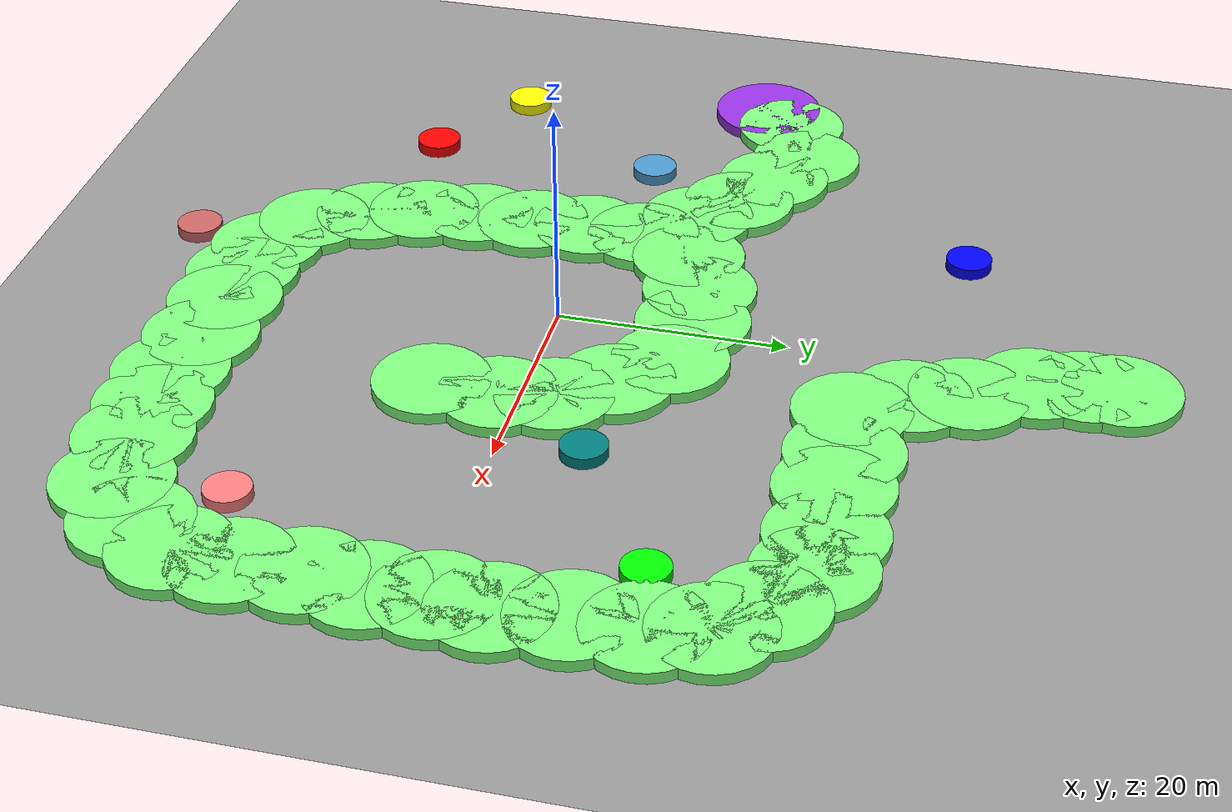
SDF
<sdf version="1.10">
 <world name="default">
  <gravity>0 0 -9.8000000000000007</gravity>
  <magnetic_field>5.5644999999999998e-06 2.2875799999999999e-05 -4.2388400000000002e-05</magnetic_field>
  <atmosphere type="adiabatic"/>
  <physics type="ode">
   <max_step_size>0.001</max_step_size>
   <real_time_factor>1</real_time_factor>
   <real_time_update_rate>1000</real_time_update_rate>
  </physics>
  <scene>
   <ambient>0.400000006 0.400000006 0.400000006 1</ambient>
   <background>0.699999988 0.699999988 0.699999988 1</background>
   <shadows>true</shadows>
  </scene>
  <model name="ground_plane">
   <static>true</static>
   <link name="link">
    <collision name="collision">
     <geometry><plane><normal>0 0 1</normal><size>100 100</size></plane></geometry>
     <surface><contact><collide_without_contact_bitmask>1</collide_without_contact_bitmask></contact></surface>
    </collision>
    <visual name="visual">
     <geometry><plane><normal>0 0 1</normal><size>100 100</size></plane></geometry>
     <material>
      <ambient>0.600000024 0.600000024 0.600000024 1</ambient>
      <diffuse>0.600000024 0.600000024 0.600000024 1</diffuse>
     </material>
    </visual>
    <inertial>
     <mass>1</mass>
     <inertia><ixx>1</ixx><ixy>0</ixy><ixz>0</ixz><iyy>1</iyy><iyz>0</iyz><izz>1</izz></inertia>
    </inertial>
   </link>
  </model>
  <model name="static_cylinder_1">
   <static>true</static>
   <pose>-25.100000000000001 -18.5 0.5 0 0 0</pose>
   <link name="link">
    <collision name="collision">
     <geometry><cylinder><radius>2</radius><length>1</length></cylinder></geometry>
    </collision>
    <visual name="visual">
     <geometry><cylinder><radius>2</radius><length>1</length></cylinder></geometry>
     <material><ambient>1 0 0 1</ambient></material>
    </visual>
    <inertial>
     <mass>1</mass>
     <inertia><ixx>1</ixx><ixy>0</ixy><ixz>0</ixz><iyy>1</iyy><iyz>0</iyz><izz>1</izz></inertia>
    </inertial>
   </link>
  </model>
  <model name="static_cylinder_2">
   <static>true</static>
   <pose>31.399999999999999 15.199999999999999 0.5 0 0 0</pose>
   <link name="link">
    <collision name="collision">
     <geometry><cylinder><radius>2</radius><length>1</length></cylinder></geometry>
    </collision>
    <visual name="visual">
     <geometry><cylinder><radius>2</radius><length>1</length></cylinder></geometry>
     <material><ambient>0 1 0 1</ambient></material>
    </visual>
    <inertial>
     <mass>1</mass>
     <inertia><ixx>1</ixx><ixy>0</ixy><ixz>0</ixz><iyy>1</iyy><iyz>0</iyz><izz>1</izz></inertia>
    </inertial>
   </link>
  </model>
  <model name="static_cylinder_3">
   <static>true</static>
   <pose>-15.9 33.299999999999997 0.5 0 0 0</pose>
   <link name="link">
    <collision name="collision">
     <geometry><cylinder><radius>2</radius><length>1</length></cylinder></geometry>
    </collision>
    <visual name="visual">
     <geometry><cylinder><radius>2</radius><length>1</length></cylinder></geometry>
     <material><ambient>0 0 1 1</ambient></material>
    </visual>
    <inertial>
     <mass>1</mass>
     <inertia><ixx>1</ixx><ixy>0</ixy><ixz>0</ixz><iyy>1</iyy><iyz>0</iyz><izz>1</izz></inertia>
    </inertial>
   </link>
  </model>
  <model name="static_cylinder_4">
   <static>true</static>
   <pose>-35 -12.199999999999999 0.5 0 0 0</pose>
   <link name="link">
    <collision name="collision">
     <geometry><cylinder><radius>2</radius><length>1</length></cylinder></geometry>
    </collision>
    <visual name="visual">
     <geometry><cylinder><radius>2</radius><length>1</length></cylinder></geometry>
     <material><ambient>1 1 0 1</ambient></material>
    </visual>
    <inertial>
     <mass>1</mass>
     <inertia><ixx>1</ixx><ixy>0</ixy><ixz>0</ixz><iyy>1</iyy><iyz>0</iyz><izz>1</izz></inertia>
    </inertial>
   </link>
  </model>
  <model name="static_cylinder_5">
   <static>true</static>
   <pose>-5.5999999999999996 -35 0.5 0 0 0</pose>
   <link name="link">
    <collision name="collision">
     <geometry><cylinder><radius>2</radius><length>1</length></cylinder></geometry>
    </collision>
    <visual name="visual">
     <geometry><cylinder><radius>2</radius><length>1</length></cylinder></geometry>
     <material><ambient>0.800000012 0.400000006 0.400000006 1</ambient></material>
    </visual>
    <inertial>
     <mass>1</mass>
     <inertia><ixx>1</ixx><ixy>0</ixy><ixz>0</ixz><iyy>1</iyy><iyz>0</iyz><izz>1</izz></inertia>
    </inertial>
   </link>
  </model>
  <model name="static_cylinder_6">
   <static>true</static>
   <pose>18.215400695800781 7.0263118743896484 0.5 0 0 0</pose>
   <link name="link">
    <collision name="collision">
     <geometry><cylinder><radius>2</radius><length>1</length></cylinder></geometry>
    </collision>
    <visual name="visual">
     <geometry><cylinder><radius>2</radius><length>1</length></cylinder></geometry>
     <material><ambient>0 0.5 0.5 1</ambient></material>
    </visual>
    <inertial>
     <mass>1</mass>
     <inertia><ixx>1</ixx><ixy>0</ixy><ixz>0</ixz><iyy>1</iyy><iyz>0</iyz><izz>1</izz></inertia>
    </inertial>
   </link>
  </model>
  <model name="static_cylinder_7">
   <static>true</static>
   <pose>-25 2.7000000000000002 0.5 0 0 0</pose>
   <link name="link">
    <collision name="collision">
     <geometry><cylinder><radius>2</radius><length>1</length></cylinder></geometry>
    </collision>
    <visual name="visual">
     <geometry><cylinder><radius>2</radius><length>1</length></cylinder></geometry>
     <material><ambient>0.300000012 0.600000024 0.800000012 1</ambient></material>
    </visual>
    <inertial>
     <mass>1</mass>
     <inertia><ixx>1</ixx><ixy>0</ixy><ixz>0</ixz><iyy>1</iyy><iyz>0</iyz><izz>1</izz></inertia>
    </inertial>
   </link>
  </model>
  <model name="static_cylinder_8">
   <static>true</static>
   <pose>29.899999999999999 -18.300000000000001 0.5 0 0 0</pose>
   <link name="link">
    <collision name="collision">
     <geometry><cylinder><radius>2</radius><length>1</length></cylinder></geometry>
    </collision>
    <visual name="visual">
     <geometry><cylinder><radius>2</radius><length>1</length></cylinder></geometry>
     <material><ambient>1 0.5 0.5 1</ambient></material>
    </visual>
    <inertial>
     <mass>1</mass>
     <inertia><ixx>1</ixx><ixy>0</ixy><ixz>0</ixz><iyy>1</iyy><iyz>0</iyz><izz>1</izz></inertia>
    </inertial>
   </link>
  </model>
  <model name="static_cylinder_9">
   <static>true</static>
   <pose>-38.200000000000003 11 0.5 0 0 0</pose>
   <link name="link">
    <collision name="collision">
     <geometry><cylinder><radius>5</radius><length>1</length></cylinder></geometry>
    </collision>
    <visual name="visual">
     <geometry><cylinder><radius>5</radius><length>1</length></cylinder></geometry>
     <material><ambient>0.600000024 0.200000003 0.899999976 1</ambient></material>
    </visual>
    <inertial>
     <mass>1</mass>
     <inertia><ixx>1</ixx><ixy>0</ixy><ixz>0</ixz><iyy>1</iyy><iyz>0</iyz><izz>1</izz></inertia>
    </inertial>
   </link>
  </model>
  <model name="static_cylinder_10">
   <static>true</static>
   <pose>18.699999999999999 27.100000000000001 0.5 0 0 0</pose>
   <link name="link">
    <collision name="collision">
     <geometry><cylinder><radius>5</radius><length>1</length></cylinder></geometry>
    </collision>
    <visual name="visual">
     <geometry><cylinder><radius>5</radius><length>1</length></cylinder></geometry>
     <material><ambient>0.5 1 0.5 1</ambient></material>
    </visual>
    <inertial>
     <mass>1</mass>
     <inertia><ixx>1</ixx><ixy>0</ixy><ixz>0</ixz><iyy>1</iyy><iyz>0</iyz><izz>1</izz></inertia>
    </inertial>
   </link>
  </model>
  <model name="static_cylinder_11">
   <static>true</static>
   <pose>28.789109487139029 27.353598416478576 0.5 0 0 0</pose>
   <link name="link">
    <collision name="collision">
     <geometry><cylinder><radius>5</radius><length>1</length></cylinder></geometry>
    </collision>
    <visual name="visual">
     <geometry><cylinder><radius>5</radius><length>1</length></cylinder></geometry>
     <material><ambient>0.5 1 0.5 1</ambient></material>
    </visual>
    <inertial>
     <mass>1</mass>
     <inertia><ixx>1</ixx><ixy>0</ixy><ixz>0</ixz><iyy>1</iyy><iyz>0</iyz><izz>1</izz></inertia>
    </inertial>
   </link>
  </model>
  <model name="static_cylinder_12">
   <static>true</static>
   <pose>36.821050008611053 21.323088967489401 0.5 0 0 0</pose>
   <link name="link">
    <collision name="collision">
     <geometry><cylinder><radius>5</radius><length>1</length></cylinder></geometry>
    </collision>
    <visual name="visual">
     <geometry><cylinder><radius>5</radius><length>1</length></cylinder></geometry>
     <material><ambient>0.5 1 0.5 1</ambient></material>
    </visual>
    <inertial>
     <mass>1</mass>
     <inertia><ixx>1</ixx><ixy>0</ixy><ixz>0</ixz><iyy>1</iyy><iyz>0</iyz><izz>1</izz></inertia>
    </inertial>
   </link>
  </model>
  <model name="static_cylinder_13">
   <static>true</static>
   <pose>37.876146426909671 11.109972079700153 0.5 0 0 0</pose>
   <link name="link">
    <collision name="collision">
     <geometry><cylinder><radius>5</radius><length>1</length></cylinder></geometry>
    </collision>
    <visual name="visual">
     <geometry><cylinder><radius>5</radius><length>1</length></cylinder></geometry>
     <material><ambient>0.5 1 0.5 1</ambient></material>
    </visual>
    <inertial>
     <mass>1</mass>
     <inertia><ixx>1</ixx><ixy>0</ixy><ixz>0</ixz><iyy>1</iyy><iyz>0</iyz><izz>1</izz></inertia>
    </inertial>
   </link>
  </model>
  <model name="static_cylinder_14">
   <static>true</static>
   <pose>38.088748783338417 0.91967666526617364 0.5 0 0 0</pose>
   <link name="link">
    <collision name="collision">
     <geometry><cylinder><radius>5</radius><length>1</length></cylinder></geometry>
    </collision>
    <visual name="visual">
     <geometry><cylinder><radius>5</radius><length>1</length></cylinder></geometry>
     <material><ambient>0.5 1 0.5 1</ambient></material>
    </visual>
    <inertial>
     <mass>1</mass>
     <inertia><ixx>1</ixx><ixy>0</ixy><ixz>0</ixz><iyy>1</iyy><iyz>0</iyz><izz>1</izz></inertia>
    </inertial>
   </link>
  </model>
  <model name="static_cylinder_15">
   <static>true</static>
   <pose>37.728131469176276 -9.2460475246674783 0.5 0 0 0</pose>
   <link name="link">
    <collision name="collision">
     <geometry><cylinder><radius>5</radius><length>1</length></cylinder></geometry>
    </collision>
    <visual name="visual">
     <geometry><cylinder><radius>5</radius><length>1</length></cylinder></geometry>
     <material><ambient>0.5 1 0.5 1</ambient></material>
    </visual>
    <inertial>
     <mass>1</mass>
     <inertia><ixx>1</ixx><ixy>0</ixy><ixz>0</ixz><iyy>1</iyy><iyz>0</iyz><izz>1</izz></inertia>
    </inertial>
   </link>
  </model>
  <model name="static_cylinder_16">
   <static>true</static>
   <pose>37.613380369497179 -19.757383936378488 0.5 0 0 0</pose>
   <link name="link">
    <collision name="collision">
     <geometry><cylinder><radius>5</radius><length>1</length></cylinder></geometry>
    </collision>
    <visual name="visual">
     <geometry><cylinder><radius>5</radius><length>1</length></cylinder></geometry>
     <material><ambient>0.5 1 0.5 1</ambient></material>
    </visual>
    <inertial>
     <mass>1</mass>
     <inertia><ixx>1</ixx><ixy>0</ixy><ixz>0</ixz><iyy>1</iyy><iyz>0</iyz><izz>1</izz></inertia>
    </inertial>
   </link>
  </model>
  <model name="static_cylinder_17">
   <static>true</static>
   <pose>30.913677807027938 -27.392619820683258 0.5 0 0 0</pose>
   <link name="link">
    <collision name="collision">
     <geometry><cylinder><radius>5</radius><length>1</length></cylinder></geometry>
    </collision>
    <visual name="visual">
     <geometry><cylinder><radius>5</radius><length>1</length></cylinder></geometry>
     <material><ambient>0.5 1 0.5 1</ambient></material>
    </visual>
    <inertial>
     <mass>1</mass>
     <inertia><ixx>1</ixx><ixy>0</ixy><ixz>0</ixz><iyy>1</iyy><iyz>0</iyz><izz>1</izz></inertia>
    </inertial>
   </link>
  </model>
  <model name="static_cylinder_18">
   <static>true</static>
   <pose>20.801909503736844 -28.339821706497233 0.5 0 0 0</pose>
   <link name="link">
    <collision name="collision">
     <geometry><cylinder><radius>5</radius><length>1</length></cylinder></geometry>
    </collision>
    <visual name="visual">
     <geometry><cylinder><radius>5</radius><length>1</length></cylinder></geometry>
     <material><ambient>0.5 1 0.5 1</ambient></material>
    </visual>
    <inertial>
     <mass>1</mass>
     <inertia><ixx>1</ixx><ixy>0</ixy><ixz>0</ixz><iyy>1</iyy><iyz>0</iyz><izz>1</izz></inertia>
    </inertial>
   </link>
  </model>
  <model name="static_cylinder_19">
   <static>true</static>
   <pose>10.733389901877011 -28.262699547093735 0.5 0 0 0</pose>
   <link name="link">
    <collision name="collision">
     <geometry><cylinder><radius>5</radius><length>1</length></cylinder></geometry>
    </collision>
    <visual name="visual">
     <geometry><cylinder><radius>5</radius><length>1</length></cylinder></geometry>
     <material><ambient>0.5 1 0.5 1</ambient></material>
    </visual>
    <inertial>
     <mass>1</mass>
     <inertia><ixx>1</ixx><ixy>0</ixy><ixz>0</ixz><iyy>1</iyy><iyz>0</iyz><izz>1</izz></inertia>
    </inertial>
   </link>
  </model>
  <model name="static_cylinder_20">
   <static>true</static>
   <pose>0.66140178595651733 -28.462214288480322 0.5 0 0 0</pose>
   <link name="link">
    <collision name="collision">
     <geometry><cylinder><radius>5</radius><length>1</length></cylinder></geometry>
    </collision>
    <visual name="visual">
     <geometry><cylinder><radius>5</radius><length>1</length></cylinder></geometry>
     <material><ambient>0.5 1 0.5 1</ambient></material>
    </visual>
    <inertial>
     <mass>1</mass>
     <inertia><ixx>1</ixx><ixy>0</ixy><ixz>0</ixz><iyy>1</iyy><iyz>0</iyz><izz>1</izz></inertia>
    </inertial>
   </link>
  </model>
  <model name="static_cylinder_21">
   <static>true</static>
   <pose>-8.7282936021540944 -25.202778341422459 0.5 0 0 0</pose>
   <link name="link">
    <collision name="collision">
     <geometry><cylinder><radius>5</radius><length>1</length></cylinder></geometry>
    </collision>
    <visual name="visual">
     <geometry><cylinder><radius>5</radius><length>1</length></cylinder></geometry>
     <material><ambient>0.5 1 0.5 1</ambient></material>
    </visual>
    <inertial>
     <mass>1</mass>
     <inertia><ixx>1</ixx><ixy>0</ixy><ixz>0</ixz><iyy>1</iyy><iyz>0</iyz><izz>1</izz></inertia>
    </inertial>
   </link>
  </model>
  <model name="static_cylinder_22">
   <static>true</static>
   <pose>-12.468609087340889 -15.976988225588176 0.5 0 0 0</pose>
   <link name="link">
    <collision name="collision">
     <geometry><cylinder><radius>5</radius><length>1</length></cylinder></geometry>
    </collision>
    <visual name="visual">
     <geometry><cylinder><radius>5</radius><length>1</length></cylinder></geometry>
     <material><ambient>0.5 1 0.5 1</ambient></material>
    </visual>
    <inertial>
     <mass>1</mass>
     <inertia><ixx>1</ixx><ixy>0</ixy><ixz>0</ixz><iyy>1</iyy><iyz>0</iyz><izz>1</izz></inertia>
    </inertial>
   </link>
  </model>
  <model name="static_cylinder_23">
   <static>true</static>
   <pose>-13.181461190576854 -5.8998051646721379 0.5 0 0 0</pose>
   <link name="link">
    <collision name="collision">
     <geometry><cylinder><radius>5</radius><length>1</length></cylinder></geometry>
    </collision>
    <visual name="visual">
     <geometry><cylinder><radius>5</radius><length>1</length></cylinder></geometry>
     <material><ambient>0.5 1 0.5 1</ambient></material>
    </visual>
    <inertial>
     <mass>1</mass>
     <inertia><ixx>1</ixx><ixy>0</ixy><ixz>0</ixz><iyy>1</iyy><iyz>0</iyz><izz>1</izz></inertia>
    </inertial>
   </link>
  </model>
  <model name="static_cylinder_24">
   <static>true</static>
   <pose>-13.35513468840729 4.3641804795332249 0.5 0 0 0</pose>
   <link name="link">
    <collision name="collision">
     <geometry><cylinder><radius>5</radius><length>1</length></cylinder></geometry>
    </collision>
    <visual name="visual">
     <geometry><cylinder><radius>5</radius><length>1</length></cylinder></geometry>
     <material><ambient>0.5 1 0.5 1</ambient></material>
    </visual>
    <inertial>
     <mass>1</mass>
     <inertia><ixx>1</ixx><ixy>0</ixy><ixz>0</ixz><iyy>1</iyy><iyz>0</iyz><izz>1</izz></inertia>
    </inertial>
   </link>
  </model>
  <model name="static_cylinder_25">
   <static>true</static>
   <pose>8.5300112520538072 26.79578032693728 0.5 0 0 0</pose>
   <link name="link">
    <collision name="collision">
     <geometry><cylinder><radius>5</radius><length>1</length></cylinder></geometry>
    </collision>
    <visual name="visual">
     <geometry><cylinder><radius>5</radius><length>1</length></cylinder></geometry>
     <material><ambient>0.5 1 0.5 1</ambient></material>
    </visual>
    <inertial>
     <mass>1</mass>
     <inertia><ixx>1</ixx><ixy>0</ixy><ixz>0</ixz><iyy>1</iyy><iyz>0</iyz><izz>1</izz></inertia>
    </inertial>
   </link>
  </model>
  <model name="static_cylinder_27">
   <static>true</static>
   <pose>4.2570589520719357 35.740485094827399 0.5 0 0 0</pose>
   <link name="link">
    <collision name="collision">
     <geometry><cylinder><radius>5</radius><length>1</length></cylinder></geometry>
    </collision>
    <visual name="visual">
     <geometry><cylinder><radius>5</radius><length>1</length></cylinder></geometry>
     <material><ambient>0.5 1 0.5 1</ambient></material>
    </visual>
    <inertial>
     <mass>1</mass>
     <inertia><ixx>1</ixx><ixy>0</ixy><ixz>0</ixz><iyy>1</iyy><iyz>0</iyz><izz>1</izz></inertia>
    </inertial>
   </link>
  </model>
  <model name="static_cylinder_28">
   <static>true</static>
   <pose>-5.6907421468030881 11.169694972897341 0.5 0 0 0</pose>
   <link name="link">
    <collision name="collision">
     <geometry><cylinder><radius>5</radius><length>1</length></cylinder></geometry>
    </collision>
    <visual name="visual">
     <geometry><cylinder><radius>5</radius><length>1</length></cylinder></geometry>
     <material><ambient>0.5 1 0.5 1</ambient></material>
    </visual>
    <inertial>
     <mass>1</mass>
     <inertia><ixx>1</ixx><ixy>0</ixy><ixz>0</ixz><iyy>1</iyy><iyz>0</iyz><izz>1</izz></inertia>
    </inertial>
   </link>
  </model>
  <model name="static_cylinder_29">
   <static>true</static>
   <pose>5.245891484314777 11.079642084485315 0.5 0 0 0</pose>
   <link name="link">
    <collision name="collision">
     <geometry><cylinder><radius>5</radius><length>1</length></cylinder></geometry>
    </collision>
    <visual name="visual">
     <geometry><cylinder><radius>5</radius><length>1</length></cylinder></geometry>
     <material><ambient>0.5 1 0.5 1</ambient></material>
    </visual>
    <inertial>
     <mass>1</mass>
     <inertia><ixx>1</ixx><ixy>0</ixy><ixz>0</ixz><iyy>1</iyy><iyz>0</iyz><izz>1</izz></inertia>
    </inertial>
   </link>
  </model>
  <model name="static_cylinder_30">
   <static>true</static>
   <pose>12.1613362137705 2.9984726909024317 0.5 0 0 0</pose>
   <link name="link">
    <collision name="collision">
     <geometry><cylinder><radius>5</radius><length>1</length></cylinder></geometry>
    </collision>
    <visual name="visual">
     <geometry><cylinder><radius>5</radius><length>1</length></cylinder></geometry>
     <material><ambient>0.5 1 0.5 1</ambient></material>
    </visual>
    <inertial>
     <mass>1</mass>
     <inertia><ixx>1</ixx><ixy>0</ixy><ixz>0</ixz><iyy>1</iyy><iyz>0</iyz><izz>1</izz></inertia>
    </inertial>
   </link>
  </model>
  <model name="static_cylinder_31">
   <static>true</static>
   <pose>12.567534002159334 -7.3457730666494108 0.5 0 0 0</pose>
   <link name="link">
    <collision name="collision">
     <geometry><cylinder><radius>5</radius><length>1</length></cylinder></geometry>
    </collision>
    <visual name="visual">
     <geometry><cylinder><radius>5</radius><length>1</length></cylinder></geometry>
     <material><ambient>0.5 1 0.5 1</ambient></material>
    </visual>
    <inertial>
     <mass>1</mass>
     <inertia><ixx>1</ixx><ixy>0</ixy><ixz>0</ixz><iyy>1</iyy><iyz>0</iyz><izz>1</izz></inertia>
    </inertial>
   </link>
  </model>
  <model name="static_cylinder_32">
   <static>true</static>
   <pose>-20.773193998181192 11.599392987046576 0.5 0 0 0</pose>
   <link name="link">
    <collision name="collision">
     <geometry><cylinder><radius>5</radius><length>1</length></cylinder></geometry>
    </collision>
    <visual name="visual">
     <geometry><cylinder><radius>5</radius><length>1</length></cylinder></geometry>
     <material><ambient>0.5 1 0.5 1</ambient></material>
    </visual>
    <inertial>
     <mass>1</mass>
     <inertia><ixx>1</ixx><ixy>0</ixy><ixz>0</ixz><iyy>1</iyy><iyz>0</iyz><izz>1</izz></inertia>
    </inertial>
   </link>
  </model>
  <model name="static_cylinder_33">
   <static>true</static>
   <pose>-29.710972519822878 16.261262573408086 0.5 0 0 0</pose>
   <link name="link">
    <collision name="collision">
     <geometry><cylinder><radius>5</radius><length>1</length></cylinder></geometry>
    </collision>
    <visual name="visual">
     <geometry><cylinder><radius>5</radius><length>1</length></cylinder></geometry>
     <material><ambient>0.5 1 0.5 1</ambient></material>
    </visual>
    <inertial>
     <mass>1</mass>
     <inertia><ixx>1</ixx><ixy>0</ixy><ixz>0</ixz><iyy>1</iyy><iyz>0</iyz><izz>1</izz></inertia>
    </inertial>
   </link>
  </model>
  <model name="static_cylinder_13_1">
   <static>true</static>
   <pose>38.395715330231326 5.284003002594039 0.5 0 0 0</pose>
   <link name="link">
    <collision name="collision">
     <geometry><cylinder><radius>5</radius><length>1</length></cylinder></geometry>
    </collision>
    <visual name="visual">
     <geometry><cylinder><radius>5</radius><length>1</length></cylinder></geometry>
     <material><ambient>0.5 1 0.5 1</ambient></material>
    </visual>
   </link>
  </model>
  <model name="static_cylinder_13_2">
   <static>true</static>
   <pose>37.799609090635677 16.692745116200797 0.5 0 0 0</pose>
   <link name="link">
    <collision name="collision">
     <geometry><cylinder><radius>5</radius><length>1</length></cylinder></geometry>
    </collision>
    <visual name="visual">
     <geometry><cylinder><radius>5</radius><length>1</length></cylinder></geometry>
     <material><ambient>0.5 1 0.5 1</ambient></material>
    </visual>
   </link>
  </model>
  <model name="static_cylinder_13_3">
   <static>true</static>
   <pose>33.597928629771133 24.628390948504801 0.5 0 0 0</pose>
   <link name="link">
    <collision name="collision">
     <geometry><cylinder><radius>5</radius><length>1</length></cylinder></geometry>
    </collision>
    <visual name="visual">
     <geometry><cylinder><radius>5</radius><length>1</length></cylinder></geometry>
     <material><ambient>0.5 1 0.5 1</ambient></material>
    </visual>
   </link>
  </model>
  <model name="static_cylinder_13_4">
   <static>true</static>
   <pose>38.207498057393423 -4.2476673502205138 0.5 0 0 0</pose>
   <link name="link">
    <collision name="collision">
     <geometry><cylinder><radius>5</radius><length>1</length></cylinder></geometry>
    </collision>
    <visual name="visual">
     <geometry><cylinder><radius>5</radius><length>1</length></cylinder></geometry>
     <material><ambient>0.5 1 0.5 1</ambient></material>
    </visual>
   </link>
  </model>
  <model name="static_cylinder_13_5">
   <static>true</static>
   <pose>37.969821950185889 -14.912941395477464 0.5 0 0 0</pose>
   <link name="link">
    <collision name="collision">
     <geometry><cylinder><radius>5</radius><length>1</length></cylinder></geometry>
    </collision>
    <visual name="visual">
     <geometry><cylinder><radius>5</radius><length>1</length></cylinder></geometry>
     <material><ambient>0.5 1 0.5 1</ambient></material>
    </visual>
   </link>
  </model>
  <model name="static_cylinder_13_6">
   <static>true</static>
   <pose>35.080401302120265 -24.025337462788936 0.5 0 0 0</pose>
   <link name="link">
    <collision name="collision">
     <geometry><cylinder><radius>5</radius><length>1</length></cylinder></geometry>
    </collision>
    <visual name="visual">
     <geometry><cylinder><radius>5</radius><length>1</length></cylinder></geometry>
     <material><ambient>0.5 1 0.5 1</ambient></material>
    </visual>
   </link>
  </model>
  <model name="static_cylinder_13_7">
   <static>true</static>
   <pose>25.323190579346878 -28.081149903125208 0.5 0 0 0</pose>
   <link name="link">
    <collision name="collision">
     <geometry><cylinder><radius>5</radius><length>1</length></cylinder></geometry>
    </collision>
    <visual name="visual">
     <geometry><cylinder><radius>5</radius><length>1</length></cylinder></geometry>
     <material><ambient>0.5 1 0.5 1</ambient></material>
    </visual>
   </link>
  </model>
  <model name="static_cylinder_13_8">
   <static>true</static>
   <pose>16.170642902903285 -28.723953957240369 0.5 0 0 0</pose>
   <link name="link">
    <collision name="collision">
     <geometry><cylinder><radius>5</radius><length>1</length></cylinder></geometry>
    </collision>
    <visual name="visual">
     <geometry><cylinder><radius>5</radius><length>1</length></cylinder></geometry>
     <material><ambient>0.5 1 0.5 1</ambient></material>
    </visual>
   </link>
  </model>
  <model name="static_cylinder_13_9">
   <static>true</static>
   <pose>5.2392009223387035 -28.310294923190497 0.5 0 0 0</pose>
   <link name="link">
    <collision name="collision">
     <geometry><cylinder><radius>5</radius><length>1</length></cylinder></geometry>
    </collision>
    <visual name="visual">
     <geometry><cylinder><radius>5</radius><length>1</length></cylinder></geometry>
     <material><ambient>0.5 1 0.5 1</ambient></material>
    </visual>
   </link>
  </model>
  <model name="static_cylinder_13_10">
   <static>true</static>
   <pose>-3.9865299925450808 -27.91157850077618 0.5 0 0 0</pose>
   <link name="link">
    <collision name="collision">
     <geometry><cylinder><radius>5</radius><length>1</length></cylinder></geometry>
    </collision>
    <visual name="visual">
     <geometry><cylinder><radius>5</radius><length>1</length></cylinder></geometry>
     <material><ambient>0.5 1 0.5 1</ambient></material>
    </visual>
   </link>
  </model>
  <model name="static_cylinder_13_11">
   <static>true</static>
   <pose>-11.068101587471316 -20.511996947328111 0.5 0 0 0</pose>
   <link name="link">
    <collision name="collision">
     <geometry><cylinder><radius>5</radius><length>1</length></cylinder></geometry>
    </collision>
    <visual name="visual">
     <geometry><cylinder><radius>5</radius><length>1</length></cylinder></geometry>
     <material><ambient>0.5 1 0.5 1</ambient></material>
    </visual>
   </link>
  </model>
  <model name="static_cylinder_13_12">
   <static>true</static>
   <pose>-13.101403890866033 -11.044725766637127 0.5 0 0 0</pose>
   <link name="link">
    <collision name="collision">
     <geometry><cylinder><radius>5</radius><length>1</length></cylinder></geometry>
    </collision>
    <visual name="visual">
     <geometry><cylinder><radius>5</radius><length>1</length></cylinder></geometry>
     <material><ambient>0.5 1 0.5 1</ambient></material>
    </visual>
   </link>
  </model>
  <model name="static_cylinder_13_13">
   <static>true</static>
   <pose>-13.495156819974802 -0.71344307950046648 0.5 0 0 0</pose>
   <link name="link">
    <collision name="collision">
     <geometry><cylinder><radius>5</radius><length>1</length></cylinder></geometry>
    </collision>
    <visual name="visual">
     <geometry><cylinder><radius>5</radius><length>1</length></cylinder></geometry>
     <material><ambient>0.5 1 0.5 1</ambient></material>
    </visual>
   </link>
  </model>
  <model name="static_cylinder_13_14">
   <static>true</static>
   <pose>-10.544061371529011 9.1385429450169582 0.5 0 0 0</pose>
   <link name="link">
    <collision name="collision">
     <geometry><cylinder><radius>5</radius><length>1</length></cylinder></geometry>
    </collision>
    <visual name="visual">
     <geometry><cylinder><radius>5</radius><length>1</length></cylinder></geometry>
     <material><ambient>0.5 1 0.5 1</ambient></material>
    </visual>
   </link>
  </model>
  <model name="static_cylinder_13_15">
   <static>true</static>
   <pose>-0.72544955337283135 11.668713765787647 0.5 0 0 0</pose>
   <link name="link">
    <collision name="collision">
     <geometry><cylinder><radius>5</radius><length>1</length></cylinder></geometry>
    </collision>
    <visual name="visual">
     <geometry><cylinder><radius>5</radius><length>1</length></cylinder></geometry>
     <material><ambient>0.5 1 0.5 1</ambient></material>
    </visual>
   </link>
  </model>
  <model name="static_cylinder_13_16">
   <static>true</static>
   <pose>9.052980416490918 7.3176701413418206 0.5 0 0 0</pose>
   <link name="link">
    <collision name="collision">
     <geometry><cylinder><radius>5</radius><length>1</length></cylinder></geometry>
    </collision>
    <visual name="visual">
     <geometry><cylinder><radius>5</radius><length>1</length></cylinder></geometry>
     <material><ambient>0.5 1 0.5 1</ambient></material>
    </visual>
   </link>
  </model>
  <model name="static_cylinder_13_17">
   <static>true</static>
   <pose>13.030818782148499 -1.5529054908266415 0.5 0 0 0</pose>
   <link name="link">
    <collision name="collision">
     <geometry><cylinder><radius>5</radius><length>1</length></cylinder></geometry>
    </collision>
    <visual name="visual">
     <geometry><cylinder><radius>5</radius><length>1</length></cylinder></geometry>
     <material><ambient>0.5 1 0.5 1</ambient></material>
    </visual>
   </link>
  </model>
  <model name="static_cylinder_13_18">
   <static>true</static>
   <pose>24.461597092244261 27.479151881470258 0.5 0 0 0</pose>
   <link name="link">
    <collision name="collision">
     <geometry><cylinder><radius>5</radius><length>1</length></cylinder></geometry>
    </collision>
    <visual name="visual">
     <geometry><cylinder><radius>5</radius><length>1</length></cylinder></geometry>
     <material><ambient>0.5 1 0.5 1</ambient></material>
    </visual>
   </link>
  </model>
  <model name="static_cylinder_13_19">
   <static>true</static>
   <pose>14.285773392604032 27.177522990464222 0.5 0 0 0</pose>
   <link name="link">
    <collision name="collision">
     <geometry><cylinder><radius>5</radius><length>1</length></cylinder></geometry>
    </collision>
    <visual name="visual">
     <geometry><cylinder><radius>5</radius><length>1</length></cylinder></geometry>
     <material><ambient>0.5 1 0.5 1</ambient></material>
    </visual>
   </link>
  </model>
  <model name="static_cylinder_13_20">
   <static>true</static>
   <pose>5.6521471684978541 31.257948216115196 0.5 0 0 0</pose>
   <link name="link">
    <collision name="collision">
     <geometry><cylinder><radius>5</radius><length>1</length></cylinder></geometry>
    </collision>
    <visual name="visual">
     <geometry><cylinder><radius>5</radius><length>1</length></cylinder></geometry>
     <material><ambient>0.5 1 0.5 1</ambient></material>
    </visual>
   </link>
  </model>
  <model name="static_cylinder_13_21">
   <static>true</static>
   <pose>1.5672336696028983 40.854348521001448 0.5 0 0 0</pose>
   <link name="link">
    <collision name="collision">
     <geometry><cylinder><radius>5</radius><length>1</length></cylinder></geometry>
    </collision>
    <visual name="visual">
     <geometry><cylinder><radius>5</radius><length>1</length></cylinder></geometry>
     <material><ambient>0.5 1 0.5 1</ambient></material>
    </visual>
   </link>
  </model>
  <model name="static_cylinder_13_22">
   <static>true</static>
   <pose>1.031969083699531 45.011926943387259 0.5 0 0 0</pose>
   <link name="link">
    <collision name="collision">
     <geometry><cylinder><radius>5</radius><length>1</length></cylinder></geometry>
    </collision>
    <visual name="visual">
     <geometry><cylinder><radius>5</radius><length>1</length></cylinder></geometry>
     <material><ambient>0.5 1 0.5 1</ambient></material>
    </visual>
   </link>
  </model>
  <model name="static_cylinder_13_21_1">
   <static>true</static>
   <pose>0.90884276878811843 47.835177213637472 0.5 0 0 0</pose>
   <link name="link">
    <collision name="collision">
     <geometry><cylinder><radius>5</radius><length>1</length></cylinder></geometry>
    </collision>
    <visual name="visual">
     <geometry><cylinder><radius>5</radius><length>1</length></cylinder></geometry>
     <material><ambient>0.5 1 0.5 1</ambient></material>
    </visual>
   </link>
  </model>
  <model name="static_cylinder_13_21_2">
   <static>true</static>
   <pose>-17.283810967963959 8.4923087719934429 0.5 0 0 0</pose>
   <link name="link">
    <collision name="collision">
     <geometry><cylinder><radius>5</radius><length>1</length></cylinder></geometry>
    </collision>
    <visual name="visual">
     <geometry><cylinder><radius>5</radius><length>1</length></cylinder></geometry>
     <material><ambient>0.5 1 0.5 1</ambient></material>
    </visual>
   </link>
  </model>
  <model name="static_cylinder_13_21_3">
   <static>true</static>
   <pose>-25.382033381626435 14.001791451480756 0.5 0 0 0</pose>
   <link name="link">
    <collision name="collision">
     <geometry><cylinder><radius>5</radius><length>1</length></cylinder></geometry>
    </collision>
    <visual name="visual">
     <geometry><cylinder><radius>5</radius><length>1</length></cylinder></geometry>
     <material><ambient>0.5 1 0.5 1</ambient></material>
    </visual>
   </link>
  </model>
  <model name="static_cylinder_13_21_4">
   <static>true</static>
   <pose>-35.419695915733413 13.787477605209782 0.5 0 0 0</pose>
   <link name="link">
    <collision name="collision">
     <geometry><cylinder><radius>5</radius><length>1</length></cylinder></geometry>
    </collision>
    <visual name="visual">
     <geometry><cylinder><radius>5</radius><length>1</length></cylinder></geometry>
     <material><ambient>0.5 1 0.5 1</ambient></material>
    </visual>
   </link>
  </model>
 </world>
</sdf>
